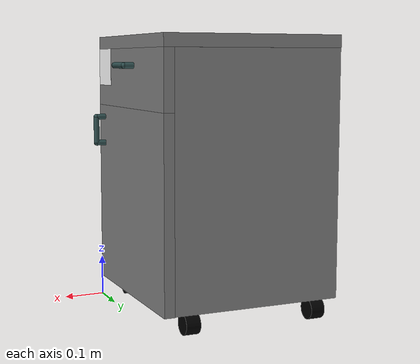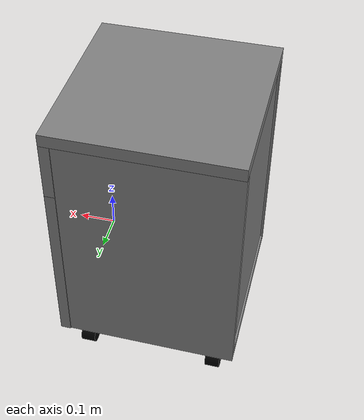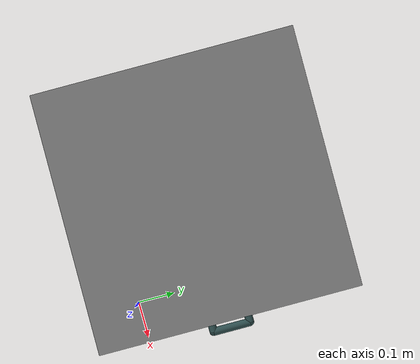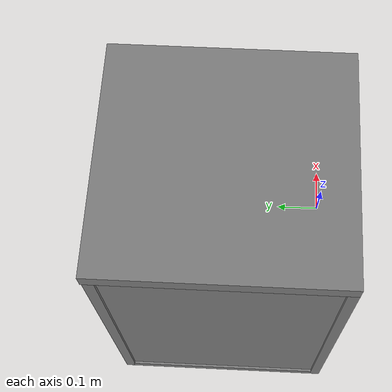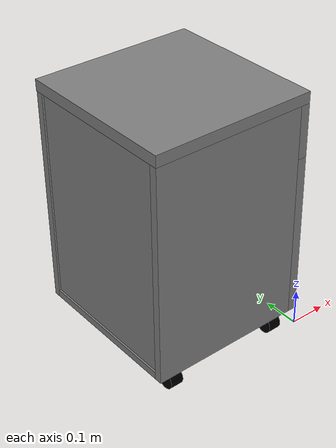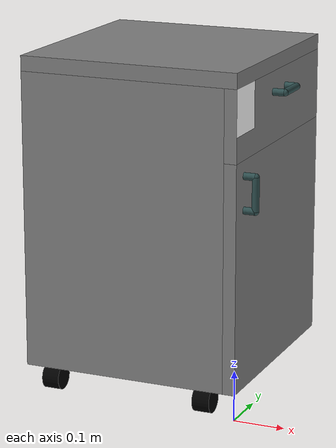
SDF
<?xml version="1.0" ?>
<sdf version="1.4">
    <model name='wagon_with_marker'>
      <link name='link'>
        <pose>0.0 0.0 0.0 0 0 0</pose>
        <inertial>
          <mass>10.0</mass>
          <inertia>
            <ixx>1</ixx>
            <ixy>0</ixy>
            <ixz>0</ixz>
            <iyy>1</iyy>
            <iyz>0</iyz>
            <izz>1</izz>
          </inertia>
        </inertial>
        <visual name='left_board'>
          <pose>-0.2325 0.01 0.345 0 0 0</pose>
          <geometry>
            <box>
              <size>0.415 0.02 0.590</size>
            </box>
          </geometry>
          <material>
            <!-- base_materials/wood -->
            <name>wood</name>
            <ambient>1 1 1 1</ambient>
            <diffuse>0.5 0.5 0.5 1.0</diffuse>
            <specular>0 0 0 1.0</specular>
            <shininess>12.5</shininess>
            <pbr>
              <metal>
                <albedo_map>model://base_materials/wood/textures/light_wood.png</albedo_map>
                <max_anisotropy>16</max_anisotropy>
                <metalness>0</metalness>
              </metal>
            </pbr>
          </material>
        </visual>
        <collision name='collision_left_board'>
          <pose>-0.2325 0.01 0.345 0 0 0</pose>
          <geometry>
            <box>
              <size>0.415 0.02 0.590</size>
            </box>
          </geometry>
          <max_contacts>10</max_contacts>
          <surface>
            <bounce/>
            <friction>
              <ode/>
            </friction>
            <contact>
              <ode/>
            </contact>
          </surface>
        </collision>
        <visual name='right_board'>
          <pose>-0.2325 0.4325 0.345 0 0 0</pose>
          <geometry>
            <box>
              <size>0.415 0.02 0.590</size>
            </box>
          </geometry>
          <material>
            <!-- base_materials/wood -->
            <name>wood</name>
            <ambient>1 1 1 1</ambient>
            <diffuse>0.5 0.5 0.5 1.0</diffuse>
            <specular>0 0 0 1.0</specular>
            <shininess>12.5</shininess>
            <pbr>
              <metal>
                <albedo_map>model://base_materials/wood/textures/light_wood.png</albedo_map>
                <max_anisotropy>16</max_anisotropy>
                <metalness>0</metalness>
              </metal>
            </pbr>
          </material>
        </visual>
        <collision name='collision_right_board'>
          <pose>-0.2325 0.4325 0.345 0 0 0</pose>
          <geometry>
            <box>
              <size>0.415 0.02 0.590</size>
            </box>
          </geometry>
          <max_contacts>10</max_contacts>
          <surface>
            <bounce/>
            <friction>
              <ode/>
            </friction>
            <contact>
              <ode/>
            </contact>
          </surface>
        </collision>
        <visual name='top_board'>
          <pose>-0.22 0.2225 0.655 0 0 0</pose>
          <geometry>
            <box>
              <size>0.44 0.445 0.03</size>
            </box>
          </geometry>
          <material>
            <!-- base_materials/wood -->
            <name>wood</name>
            <ambient>1 1 1 1</ambient>
            <diffuse>0.5 0.5 0.5 1.0</diffuse>
            <specular>0 0 0 1.0</specular>
            <shininess>12.5</shininess>
            <pbr>
              <metal>
                <albedo_map>model://base_materials/wood/textures/light_wood.png</albedo_map>
                <max_anisotropy>16</max_anisotropy>
                <metalness>0</metalness>
              </metal>
            </pbr>
          </material>
        </visual>
        <collision name='collision_top_board'>
          <pose>-0.22 0.2225 0.655 0 0 0</pose>
          <geometry>
            <box>
              <size>0.44 0.445 0.03</size>
            </box>
          </geometry>
          <max_contacts>10</max_contacts>
          <surface>
            <bounce/>
            <friction>
              <ode/>
            </friction>
            <contact>
              <ode/>
            </contact>
          </surface>
        </collision>
        <visual name='back_board'>
          <pose>-0.425 0.2225 0.345 0 0 0</pose>
          <geometry>
            <box>
              <size>0.02 0.405 0.59</size>
            </box>
          </geometry>
          <material>
            <!-- base_materials/wood -->
            <name>wood</name>
            <ambient>1 1 1 1</ambient>
            <diffuse>0.5 0.5 0.5 1.0</diffuse>
            <specular>0 0 0 1.0</specular>
            <shininess>12.5</shininess>
            <pbr>
              <metal>
                <albedo_map>model://base_materials/wood/textures/light_wood.png</albedo_map>
                <max_anisotropy>16</max_anisotropy>
                <metalness>0</metalness>
              </metal>
            </pbr>
          </material>
        </visual>
        <collision name='collision_back_board'>
          <pose>-0.425 0.2225 0.345 0 0 0</pose>
          <geometry>
            <box>
              <size>0.02 0.405 0.59</size>
            </box>
          </geometry>
          <max_contacts>10</max_contacts>
          <surface>
            <bounce/>
            <friction>
              <ode/>
            </friction>
            <contact>
              <ode/>
            </contact>
          </surface>
        </collision>
        <visual name='bottom_board'>
          <pose>-0.2325 0.2225 0.06 0 0 0</pose>
          <geometry>
            <box>
              <size>0.415 0.405 0.02</size>
            </box>
          </geometry>
          <material>
            <!-- base_materials/wood -->
            <name>wood</name>
            <ambient>1 1 1 1</ambient>
            <diffuse>0.5 0.5 0.5 1.0</diffuse>
            <specular>0 0 0 1.0</specular>
            <shininess>12.5</shininess>
            <pbr>
              <metal>
                <albedo_map>model://base_materials/wood/textures/light_wood.png</albedo_map>
                <max_anisotropy>16</max_anisotropy>
                <metalness>0</metalness>
              </metal>
            </pbr>
          </material>
        </visual>
        <collision name='collision_bottom_board'>
          <pose>-0.2325 0.2225 0.06 0 0 0</pose>
          <geometry>
            <box>
              <size>0.415 0.405 0.02</size>
            </box>
          </geometry>
          <max_contacts>10</max_contacts>
          <surface>
            <bounce/>
            <friction>
              <ode/>
            </friction>
            <contact>
              <ode/>
            </contact>
          </surface>
        </collision>
        <visual name='1st_drawer'>
          <pose>-0.0125 0.2225 0.57 0 0 0</pose>
          <geometry>
            <box>
              <size>0.025 0.445 0.140</size>
            </box>
          </geometry>
          <material>
            <!-- base_materials/wood -->
            <name>wood</name>
            <ambient>1 1 1 1</ambient>
            <diffuse>0.5 0.5 0.5 1.0</diffuse>
            <specular>0 0 0 1.0</specular>
            <shininess>12.5</shininess>
            <pbr>
              <metal>
                <albedo_map>model://base_materials/wood/textures/light_wood.png</albedo_map>
                <max_anisotropy>16</max_anisotropy>
                <metalness>0</metalness>
              </metal>
            </pbr>
          </material>
        </visual>
        <collision name='collision_1st_drawer'>
          <pose>-0.0125 0.2225 0.57 0 0 0</pose>
          <geometry>
            <box>
              <size>0.025 0.445 0.140</size>
            </box>
          </geometry>
          <max_contacts>10</max_contacts>
          <surface>
            <bounce/>
            <friction>
              <ode/>
            </friction>
            <contact>
              <ode/>
            </contact>
          </surface>
        </collision>
        <visual name='1st_drawer_handle_l1'>
          <pose>0.0115 0.1895 0.6 0 1.5708 0</pose>
          <geometry>
            <cylinder>
              <radius>0.007</radius>
              <length>0.023</length>
            </cylinder>
          </geometry>
          <material>
            <!-- color:darkslategray -->
            <ambient>0.18431 0.3098 0.3098 1</ambient>
            <diffuse>0.18431 0.3098 0.3098 1</diffuse>
            <specular>0.1 0.1 0.1 1</specular>
          </material>
        </visual>
        <collision name='collision_1st_drawer_handle_l1'>
          <pose>0.0115 0.1895 0.6 0 1.5708 0</pose>
          <geometry>
            <cylinder>
              <radius>0.007</radius>
              <length>0.023</length>
            </cylinder>
          </geometry>
          <max_contacts>10</max_contacts>
          <surface>
            <bounce/>
            <friction>
              <ode/>
            </friction>
            <contact>
              <ode/>
            </contact>
          </surface>
        </collision>
        <visual name='1st_drawer_handle_l2'>
          <pose>0.023 0.1895 0.6 0 0 0</pose>
          <geometry>
            <sphere>
              <radius>0.007</radius>
            </sphere>
          </geometry>
          <material>
            <!-- color:darkslategray -->
            <ambient>0.18431 0.3098 0.3098 1</ambient>
            <diffuse>0.18431 0.3098 0.3098 1</diffuse>
            <specular>0.1 0.1 0.1 1</specular>
          </material>
        </visual>
        <collision name='collision_1st_drawer_handle_l2'>
          <pose>0.023 0.1895 0.6 0 0 0</pose>
          <geometry>
            <sphere>
              <radius>0.007</radius>
            </sphere>
          </geometry>
          <max_contacts>10</max_contacts>
          <surface>
            <bounce/>
            <friction>
              <ode/>
            </friction>
            <contact>
              <ode/>
            </contact>
          </surface>
        </collision>
        <visual name='1st_drawer_handle_r1'>
          <pose>0.0115 0.2555 0.6 0 1.5708 0</pose>
          <geometry>
            <cylinder>
              <radius>0.007</radius>
              <length>0.023</length>
            </cylinder>
          </geometry>
          <material>
            <!-- color:darkslategray -->
            <ambient>0.18431 0.3098 0.3098 1</ambient>
            <diffuse>0.18431 0.3098 0.3098 1</diffuse>
            <specular>0.1 0.1 0.1 1</specular>
          </material>
        </visual>
        <collision name='collision_1st_drawer_handle_r1'>
          <pose>0.0115 0.2555 0.6 0 1.5708 0</pose>
          <geometry>
            <cylinder>
              <radius>0.007</radius>
              <length>0.023</length>
            </cylinder>
          </geometry>
          <max_contacts>10</max_contacts>
          <surface>
            <bounce/>
            <friction>
              <ode/>
            </friction>
            <contact>
              <ode/>
            </contact>
          </surface>
        </collision>
        <visual name='1st_drawer_handle_r2'>
          <pose>0.023 0.2555 0.6 0 0 0</pose>
          <geometry>
            <sphere>
              <radius>0.007</radius>
            </sphere>
          </geometry>
          <material>
            <!-- color:darkslategray -->
            <ambient>0.18431 0.3098 0.3098 1</ambient>
            <diffuse>0.18431 0.3098 0.3098 1</diffuse>
            <specular>0.1 0.1 0.1 1</specular>
          </material>
        </visual>
        <collision name='collision_1st_drawer_handle_r2'>
          <pose>0.023 0.2555 0.6 0 0 0</pose>
          <geometry>
            <sphere>
              <radius>0.007</radius>
            </sphere>
          </geometry>
          <max_contacts>10</max_contacts>
          <surface>
            <bounce/>
            <friction>
              <ode/>
            </friction>
            <contact>
              <ode/>
            </contact>
          </surface>
        </collision>
        <visual name='1st_drawer_handle_center'>
          <pose>0.023 0.2225 0.6 1.5708 0 0</pose>
          <geometry>
            <cylinder>
              <radius>0.007</radius>
              <length>0.066</length>
            </cylinder>
          </geometry>
          <material>
            <!-- color:darkslategray -->
            <ambient>0.18431 0.3098 0.3098 1</ambient>
            <diffuse>0.18431 0.3098 0.3098 1</diffuse>
            <specular>0.1 0.1 0.1 1</specular>
          </material>
        </visual>
        <collision name='collision_1st_drawer_handle_center'>
          <pose>0.023 0.2225 0.6 1.5708 0 0</pose>
          <geometry>
            <cylinder>
              <radius>0.007</radius>
              <length>0.066</length>
            </cylinder>
          </geometry>
          <max_contacts>10</max_contacts>
          <surface>
            <bounce/>
            <friction>
              <ode/>
            </friction>
            <contact>
              <ode/>
            </contact>
          </surface>
        </collision>
        <visual name='2nd_drawer'>
          <pose>-0.0125 0.2225 0.275 0 0 0</pose>
          <geometry>
            <box>
              <size>0.025 0.445 0.45</size>
            </box>
          </geometry>
          <material>
            <!-- base_materials/wood -->
            <name>wood</name>
            <ambient>1 1 1 1</ambient>
            <diffuse>0.5 0.5 0.5 1.0</diffuse>
            <specular>0 0 0 1.0</specular>
            <shininess>12.5</shininess>
            <pbr>
              <metal>
                <albedo_map>model://base_materials/wood/textures/light_wood.png</albedo_map>
                <max_anisotropy>16</max_anisotropy>
                <metalness>0</metalness>
              </metal>
            </pbr>
          </material>
        </visual>
        <collision name='collision_2nd_drawer'>
          <pose>-0.0125 0.2225 0.275 0 0 0</pose>
          <geometry>
            <box>
              <size>0.025 0.445 0.45</size>
            </box>
          </geometry>
          <max_contacts>10</max_contacts>
          <surface>
            <bounce/>
            <friction>
              <ode/>
            </friction>
            <contact>
              <ode/>
            </contact>
          </surface>
        </collision>
        <visual name='2nd_drawer_handle_top1'>
          <pose>0.0115 0.04 0.47 0 1.5708 0</pose>
          <geometry>
            <cylinder>
              <radius>0.007</radius>
              <length>0.023</length>
            </cylinder>
          </geometry>
          <material>
            <!-- color:darkslategray -->
            <ambient>0.18431 0.3098 0.3098 1</ambient>
            <diffuse>0.18431 0.3098 0.3098 1</diffuse>
            <specular>0.1 0.1 0.1 1</specular>
          </material>
        </visual>
        <collision name='collision_2nd_drawer_handle_top1'>
          <pose>0.0115 0.04 0.47 0 1.5708 0</pose>
          <geometry>
            <cylinder>
              <radius>0.007</radius>
              <length>0.023</length>
            </cylinder>
          </geometry>
          <max_contacts>10</max_contacts>
          <surface>
            <bounce/>
            <friction>
              <ode/>
            </friction>
            <contact>
              <ode/>
            </contact>
          </surface>
        </collision>
        <visual name='2nd_drawer_handle_top2'>
          <pose>0.023 0.04 0.47 0 0 0</pose>
          <geometry>
            <sphere>
              <radius>0.007</radius>
            </sphere>
          </geometry>
          <material>
            <!-- color:darkslategray -->
            <ambient>0.18431 0.3098 0.3098 1</ambient>
            <diffuse>0.18431 0.3098 0.3098 1</diffuse>
            <specular>0.1 0.1 0.1 1</specular>
          </material>
        </visual>
        <collision name='2nd_drawer_handle_top2'>
          <pose>0.023 0.04 0.47 0 0 0</pose>
          <geometry>
            <sphere>
              <radius>0.007</radius>
            </sphere>
          </geometry>
          <max_contacts>10</max_contacts>
          <surface>
            <bounce/>
            <friction>
              <ode/>
            </friction>
            <contact>
              <ode/>
            </contact>
          </surface>
        </collision>
        <visual name='2nd_drawer_handle_bottom1'>
          <pose>0.0115 0.04 0.404 0 1.5708 0</pose>
          <geometry>
            <cylinder>
              <radius>0.007</radius>
              <length>0.023</length>
            </cylinder>
          </geometry>
          <material>
            <!-- color:darkslategray -->
            <ambient>0.18431 0.3098 0.3098 1</ambient>
            <diffuse>0.18431 0.3098 0.3098 1</diffuse>
            <specular>0.1 0.1 0.1 1</specular>
          </material>
        </visual>
        <collision name='collision_2nd_drawer_handle_bottom1'>
          <pose>0.0115 0.04 0.404 0 1.5708 0</pose>
          <geometry>
            <cylinder>
              <radius>0.007</radius>
              <length>0.023</length>
            </cylinder>
          </geometry>
          <max_contacts>10</max_contacts>
          <surface>
            <bounce/>
            <friction>
              <ode/>
            </friction>
            <contact>
              <ode/>
            </contact>
          </surface>
        </collision>
        <visual name='2nd_drawer_handle_bottom2'>
          <pose>0.023 0.04 0.404 0 0 0</pose>
          <geometry>
            <sphere>
              <radius>0.007</radius>
            </sphere>
          </geometry>
          <material>
            <!-- color:darkslategray -->
            <ambient>0.18431 0.3098 0.3098 1</ambient>
            <diffuse>0.18431 0.3098 0.3098 1</diffuse>
            <specular>0.1 0.1 0.1 1</specular>
          </material>
        </visual>
        <collision name='2nd_drawer_handle_bottom2'>
          <pose>0.023 0.04 0.404 0 0 0</pose>
          <geometry>
            <sphere>
              <radius>0.007</radius>
            </sphere>
          </geometry>
          <max_contacts>10</max_contacts>
          <surface>
            <bounce/>
            <friction>
              <ode/>
            </friction>
            <contact>
              <ode/>
            </contact>
          </surface>
        </collision>
        <visual name='2nd_drawer_handle_center'>
          <pose>0.023 0.04 0.437 0 0 0</pose>
          <geometry>
            <cylinder>
              <radius>0.007</radius>
              <length>0.066</length>
            </cylinder>
          </geometry>
          <material>
            <!-- color:darkslategray -->
            <ambient>0.18431 0.3098 0.3098 1</ambient>
            <diffuse>0.18431 0.3098 0.3098 1</diffuse>
            <specular>0.1 0.1 0.1 1</specular>
          </material>
        </visual>
        <collision name='collision_2nd_drawer_handle_center'>
          <pose>0.023 0.04 0.437 0 0 0</pose>
          <geometry>
            <cylinder>
              <radius>0.007</radius>
              <length>0.066</length>
            </cylinder>
          </geometry>
          <max_contacts>10</max_contacts>
          <surface>
            <bounce/>
            <friction>
              <ode/>
            </friction>
            <contact>
              <ode/>
            </contact>
          </surface>
        </collision>
        <visual name='left_front_caster'>
          <pose>-0.07 0.025 0.025 0 1.5708 0</pose>
          <geometry>
            <cylinder>
              <radius>0.025</radius>
              <length>0.035</length>
            </cylinder>
          </geometry>
          <material>
            <!-- Black -->
            <ambient>0.0 0.0 0.0 1.0</ambient>
            <diffuse>0.0 0.0 0.0 1.0</diffuse>
            <specular>0.1 0.1 0.1 1.0</specular>
            <shininess>5.0</shininess>
          </material>
        </visual>
        <collision name='collision_left_front_caster'>
          <pose>-0.07 0.025 0.025 0 1.5708 0</pose>
          <geometry>
            <cylinder>
              <radius>0.025</radius>
              <length>0.035</length>
            </cylinder>
          </geometry>
          <max_contacts>10</max_contacts>
          <surface>
            <bounce/>
            <friction>
              <ode/>
            </friction>
            <contact>
              <ode/>
            </contact>
          </surface>
        </collision>
        <visual name='right_front_caster'>
          <pose>-0.07 0.420 0.025 0 1.5708 0</pose>
          <geometry>
            <cylinder>
              <radius>0.025</radius>
              <length>0.035</length>
            </cylinder>
          </geometry>
          <material>
            <!-- Black -->
            <ambient>0.0 0.0 0.0 1.0</ambient>
            <diffuse>0.0 0.0 0.0 1.0</diffuse>
            <specular>0.1 0.1 0.1 1.0</specular>
            <shininess>5.0</shininess>
          </material>
        </visual>
        <collision name='collision_right_front_caster'>
          <pose>-0.07 0.420 0.025 0 1.5708 0</pose>
          <geometry>
            <cylinder>
              <radius>0.025</radius>
              <length>0.035</length>
            </cylinder>
          </geometry>
          <max_contacts>10</max_contacts>
          <surface>
            <bounce/>
            <friction>
              <ode/>
            </friction>
            <contact>
              <ode/>
            </contact>
          </surface>
        </collision>
        <visual name='left_back_caster'>
          <pose>-0.39 0.025 0.025 0 1.5708 0</pose>
          <geometry>
            <cylinder>
              <radius>0.025</radius>
              <length>0.035</length>
            </cylinder>
          </geometry>
          <material>
            <!-- Black -->
            <ambient>0.0 0.0 0.0 1.0</ambient>
            <diffuse>0.0 0.0 0.0 1.0</diffuse>
            <specular>0.1 0.1 0.1 1.0</specular>
            <shininess>5.0</shininess>
          </material>
        </visual>
        <collision name='collision_left_back_caster'>
          <pose>-0.39 0.025 0.025 0 1.5708 0</pose>
          <geometry>
            <cylinder>
              <radius>0.025</radius>
              <length>0.035</length>
            </cylinder>
          </geometry>
          <max_contacts>10</max_contacts>
          <surface>
            <bounce/>
            <friction>
              <ode/>
            </friction>
            <contact>
              <ode/>
            </contact>
          </surface>
        </collision>
        <visual name='right_back_caster'>
          <pose>-0.39 0.420 0.025 0 1.5708 0</pose>
          <geometry>
            <cylinder>
              <radius>0.025</radius>
              <length>0.035</length>
            </cylinder>
          </geometry>
          <material>
            <!-- Black -->
            <ambient>0.0 0.0 0.0 1.0</ambient>
            <diffuse>0.0 0.0 0.0 1.0</diffuse>
            <specular>0.1 0.1 0.1 1.0</specular>
            <shininess>5.0</shininess>
          </material>
        </visual>
        <collision name='collision_right_back_caster'>
          <pose>-0.39 0.420 0.025 0 1.5708 0</pose>
          <geometry>
            <cylinder>
              <radius>0.025</radius>
              <length>0.035</length>
            </cylinder>
          </geometry>
          <max_contacts>10</max_contacts>
          <surface>
            <bounce/>
            <friction>
              <ode/>
            </friction>
            <contact>
              <ode/>
            </contact>
          </surface>
        </collision>
        <visual name='marker_0012'>
          <pose>0 0.045 0.595 0 1.5708 3.1415</pose>
          <geometry>
            <box>
              <size>0.09 0.09 0.0001</size>
            </box>
          </geometry>

          <material>
            <name>Marker/0012</name>

            <ambient>1 1 1 1</ambient>  <!-- 周囲光 (真っ白) -->
            <diffuse>1 1 1 1</diffuse>  <!-- 反射光 (真っ白) -->
            <specular>0 0 0 1</specular>  <!-- 鏡面反射 (無し) -->
            <emissive>0 0 0 0</emissive>  <!-- 発光 (無し) -->

            <pbr>
              <metal>
                <albedo_map>model://marker/0012/textures/BchThin_Id0012_Size70.png</albedo_map>
                <max_anisotropy>16</max_anisotropy>
                <metalness>0.0</metalness> <!-- 金属感を排除 -->
              </metal>
            </pbr>
          </material>
        </visual>
        <velocity_decay>
          <linear>0</linear>
          <angular>0</angular>
        </velocity_decay>
        <self_collide>0</self_collide>
        <kinematic>0</kinematic>
        <gravity>1</gravity>
      </link>
      <static>1</static>
    </model>
</sdf>
